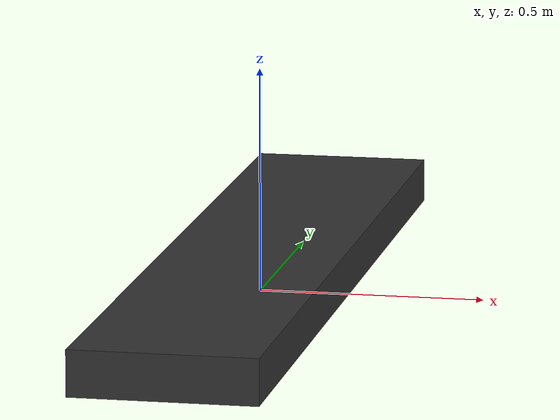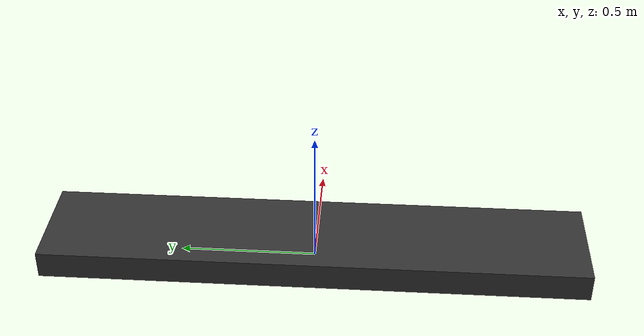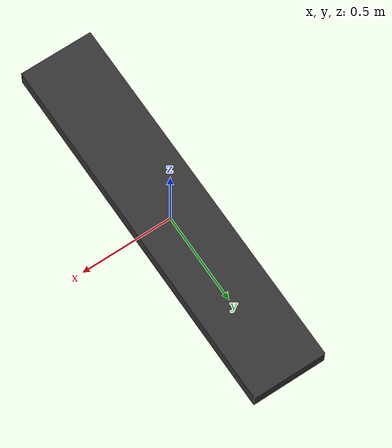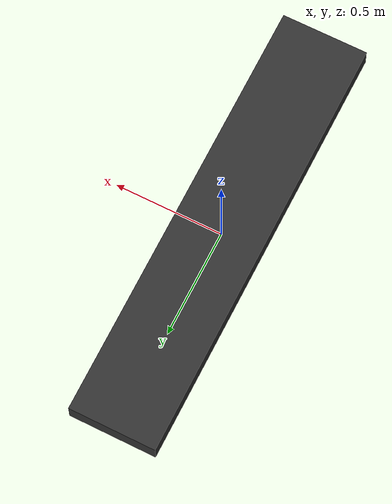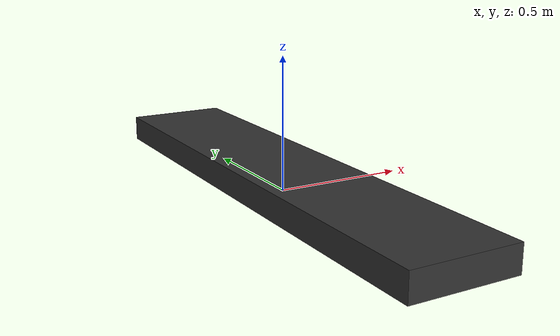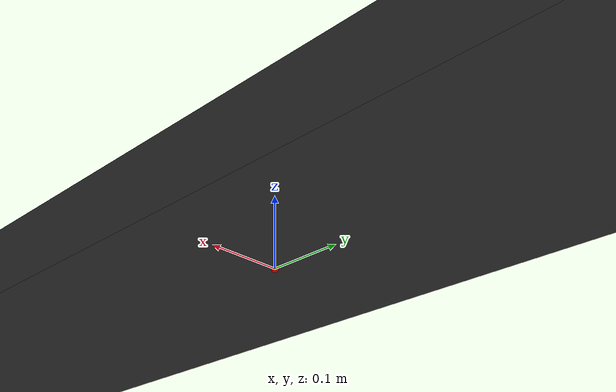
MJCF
<mujoco model="Linear_guide">
  <compiler angle="radian"/>
  <option timestep="0.01"/>

  <visual>
    <headlight diffuse="0.6 0.6 0.6" ambient="0.1 0.1 0.1" specular="0 0 0"/>
    <rgba haze="0.15 0.25 0.35 1"/>
    <global azimuth="120" elevation="-20"/>
  </visual>

  <asset>
    <mesh name="guide_mesh" file="Linear_guide.obj"/>
  </asset>

  <worldbody>
    <body name="obstacle_body" pos="0 0 0">
      <inertial mass="624" pos="0 0 0.05" diaginertia="208.52 8.84 216.32"/>
      <geom type="mesh" mesh="guide_mesh" rgba="0.2 0.2 0.2 1" contype="0" conaffinity="0" group="0"/>
      <!-- collision cylinder -->
      <geom name="base_plate_guide" type="box" size="0.2 1 0.05" pos="0 0 0.05" rgba="0.8 0.2 0.2 1" contype="1" conaffinity="1" group="3"/>
      <!-- Marker (red sphere) to specify the origin -->
      <site name="mount_site_guide" pos="0 0 0" size="0.005" rgba="1 0 0 1"/>
      <!-- Marker (green sphere) to specify the point of application of the weight -->
      <geom type="sphere" size="0.005" pos="0 0 0.05" rgba="0 1 0 1" contype="0" conaffinity="0" group="2"/>
    </body>
  </worldbody>
</mujoco>
